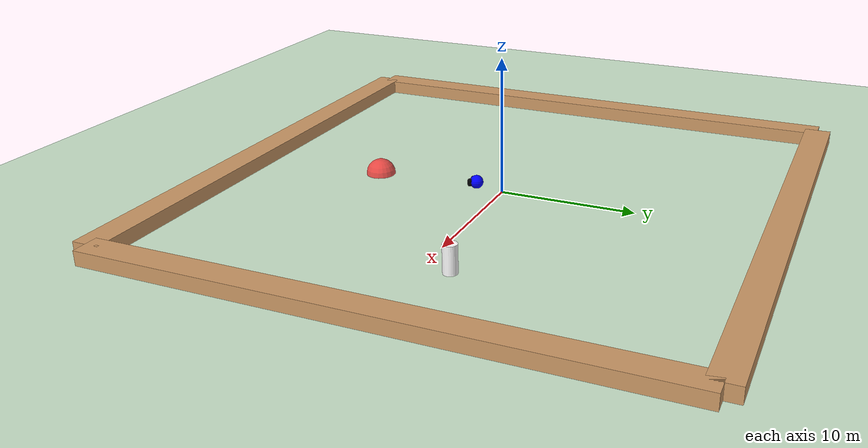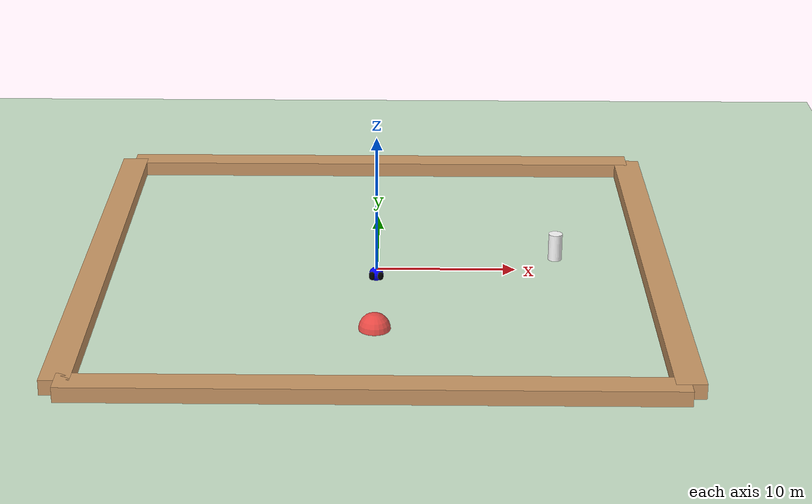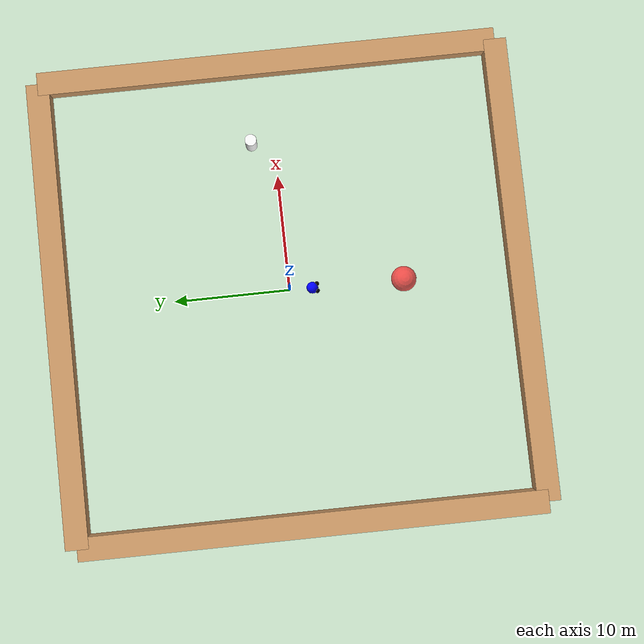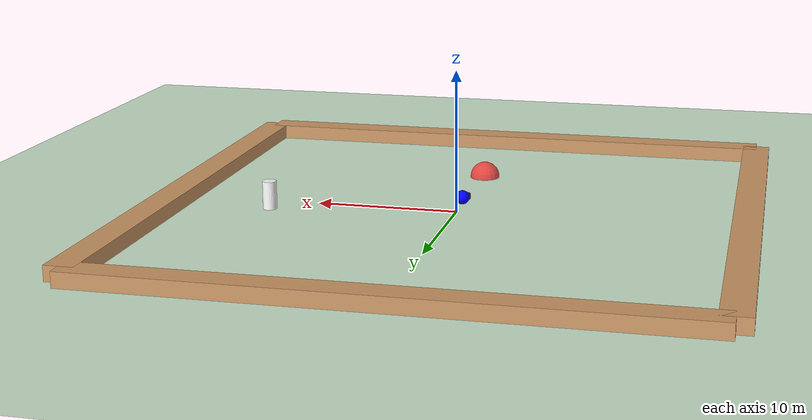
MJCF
<mujoco>
  <compiler inertiafromgeom="true" angle="degree" coordinate="local" />
 <visual>
        <map fogstart="3" fogend="5" force="0.1" znear="0.5"/>
        <quality shadowsize="2048" offsamples="8"/>
        <global offwidth="800" offheight="800"/>
    </visual>
  <default>
    <joint limited="false" armature="0" damping="0" />
    <geom condim="3" conaffinity="0" margin="0" friction="1 0.5 0.5" rgba="0.8 0.6 0.4 1" density="100" />
  </default>
  <asset>
    <texture type="skybox" builtin="gradient" width="100" height="100" rgb1="1 1 1" rgb2="0 0 0" />
    <texture name="texgeom" type="cube" builtin="flat" mark="cross" width="127" height="1278" rgb1="0.8 0.6 0.4" rgb2="0.8 0.6 0.4" markrgb="1 1 1" random="0.01" />
    <texture name="texplane" type="2d" builtin="checker" rgb1="0 0 0" rgb2="0.8 0.8 0.8" width="100" height="100" />    <material name='MatPlane' texture="texplane" shininess="1" texrepeat="30 30" specular="1"  reflectance="0.5" />
    <material name='geom' texture="texgeom" texuniform="true" />
  </asset>
  <option timestep="0.02" integrator="RK4" />
  <worldbody>
    <light directional="true" cutoff="100" exponent="1" diffuse="1 1 1" specular=".1 .1 .1" pos="0 0 1.3" dir="-0 0 -1.3" />
    <geom name='floor' material="MatPlane" pos='0 0 0' size='40 40 40' type='plane' conaffinity='1' rgba='0.8 0.9 0.8 1' condim='3' />
    <body name="point" pos="0 0 0">
      <joint type="slide" name="push_1" axis='1 0 0' damping='1'/>
      <joint type="slide" name="push_2" axis='0 1 0' damping='1'/>
      <geom name="arrow1" type="capsule" size="0.2 0.1 0.1" pos="-0.3 -2.4 0.5" rgba="0 0 0 1" />
      <geom name="arrow2" type="capsule" size="0.2 0.1 0.1" pos="0.3 -2.4 0.5" rgba="0 0 0 1"/>
      <geom name="point" type="sphere" size="0.5" pos="0 -2 0.5" density="100" conaffinity='1' contype='1' rgba='0 0 2 3' />
    </body>
    <body name='walls' pos="0 0 0">
       <geom name="rod1" type="box" pos="20 0 0.0" size="1 20 1" density="100"/>
       <geom name="rod2" type="box" pos="-20 0 0.0" size="1 20 1" density="100"/>
       <geom name="rod3" type="box" pos="0 20 0.0" size="20 1 1" density="100"/>
       <geom name="rod4" type="box" pos="0 -20 0.0" size="20 1 1" density="100"/>
    </body>
    <body name='cylinder'>
      <geom name="cylinder" type="cylinder" size="0.5 1 " pos="13.0 2.0 1" density="0.01" conaffinity='1' contype='1' rgba='1 2 3 2' solref="0.02 0.001" />
      <joint name="goal_slidey" type="slide" pos="0 0 0" axis="0 1 0"  damping="0.5"/>
      <joint name="goal_slidex" type="slide" pos="0 0 0" axis="1 0 0"  damping="0.5"/>
</body>

<body name="goal" pos="0 -10.0 0.00">
            <geom rgba="1 0.2 0.2 0.8" type="sphere" size="1.1" density='0.00001' contype="0" conaffinity="0"/>
            <joint name="goal_x" type="slide" pos="0 0 0" axis="1 0 0" range="-0.3 0.3" damping="0.5"/>
            <joint name="goal_y" type="slide" pos="0 0 0" axis="0 1 0" range="-0.3 0.3" damping="0.5"/>
        </body>

  </worldbody>
  <actuator>
     <motor ctrllimited="true" ctrlrange="-400.0 400.0" joint='push_2' />
     <motor ctrllimited="true" ctrlrange="-400.0 400.0" joint='push_1' />
  </actuator>
</mujoco>
